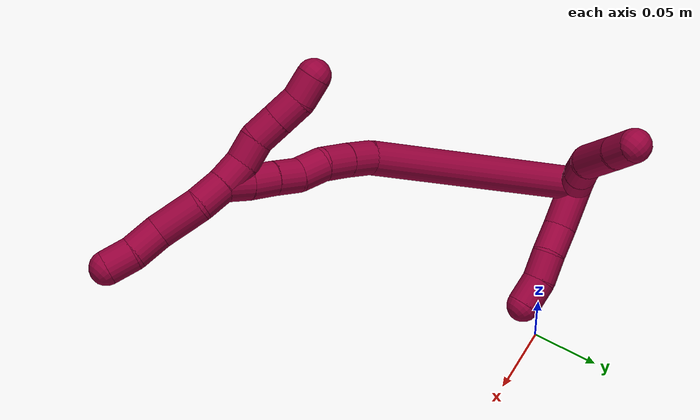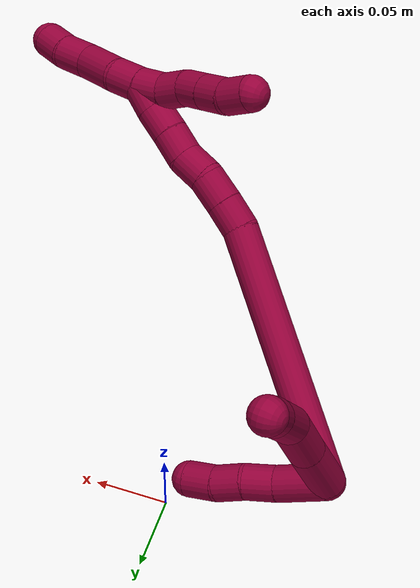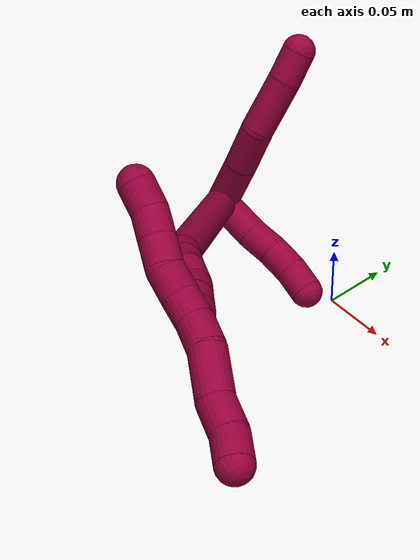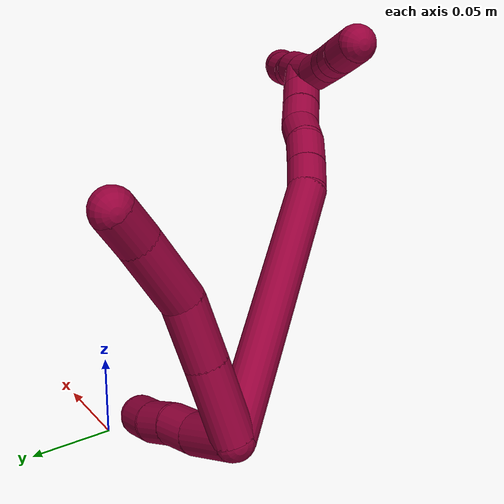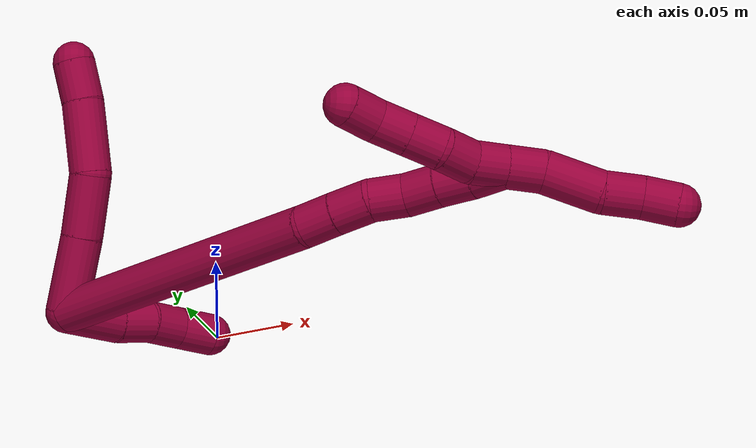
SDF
<sdf version="1.7">
 <world name="default">
  <model name="photoneo_s_sensor">
   <static>1</static>
   <pose>0 0 2 1.57079 1.57079 3.14159</pose>
   <link name="link">
    <inertial><mass>0.1</mass></inertial>
    <sensor name="sensor" type="depth">
     <update_rate>30</update_rate>
     <camera>
      <horizontal_fov>1.22</horizontal_fov>
      <image><width>1920</width><height>1200</height><format>B8G8R8</format></image>
      <clip><near>0.1</near><far>4</far></clip>
      <depth_camera><output>points</output></depth_camera>
     </camera>
     <plugin name="camera_plugin" filename="libgazebo_ros_depth_camera.so">
      <baseline>0.2</baseline>
      <alwaysOn>1</alwaysOn>
      <updateRate>0.0</updateRate>
      <cameraName>camera_ir</cameraName>
      <imageTopicName>/camera/color/image_raw</imageTopicName>
      <cameraInfoTopicName>/camera/color/camera_info</cameraInfoTopicName>
      <depthImageTopicName>/camera/depth/image_raw</depthImageTopicName>
      <depthImageCameraInfoTopicName>/camera/depth/camera_info</depthImageCameraInfoTopicName>
      <pointCloudTopicName>/camera/depth/points</pointCloudTopicName>
      <frameName>fr_optical</frameName>
      <pointCloudCutoff>0.1</pointCloudCutoff>
      <pointCloudCutoffMax>2.0</pointCloudCutoffMax>
      <distortionK1>0</distortionK1>
      <distortionK2>0</distortionK2>
      <distortionK3>0</distortionK3>
      <distortionT1>0</distortionT1>
      <distortionT2>0</distortionT2>
      <CxPrime>0</CxPrime>
      <Cx>0</Cx>
      <Cy>0</Cy>
      <focalLength>0</focalLength>
      <hackBaseline>0</hackBaseline>
     </plugin>
    </sensor>
   </link>
  </model>
  <model name="8">
   <static>0</static>
   <link name="8">
    <collision name="collision-cylinder-e_1_2_8">
     <pose>-0.015939 -0.016117 0.001926 1.45186 -0.776301 -0.696314</pose>
     <geometry><cylinder><radius>0.0125</radius><length>0.045498</length></cylinder></geometry>
     <surface>
      <friction><ode><mu>1.16</mu><mu2>1.16</mu2><slip1>0</slip1><slip2>0</slip2></ode></friction>
      <contact><ode><kp>1e+06</kp><kd>1</kd><max_vel>0</max_vel><min_depth>0.001</min_depth></ode></contact>
     </surface>
    </collision>
    <visual name="visual-cylinder-e_1_2_8">
     <pose>-0.015939 -0.016117 0.001926 1.45186 -0.776301 -0.696314</pose>
     <geometry><cylinder><radius>0.0125</radius><length>0.045498</length></cylinder></geometry>
     <material><ambient>0.584314 0 0.227451 1</ambient></material>
    </visual>
    <collision name="collision-cylinder-e_2_8_9">
     <pose>-0.045217 -0.04515 0.004351 1.53214 -0.801149 -0.773752</pose>
     <geometry><cylinder><radius>0.0125</radius><length>0.03715</length></cylinder></geometry>
     <surface>
      <friction><ode><mu>1.16</mu><mu2>1.16</mu2><slip1>0</slip1><slip2>0</slip2></ode></friction>
      <contact><ode><kp>1e+06</kp><kd>1</kd><max_vel>0</max_vel><min_depth>0.001</min_depth></ode></contact>
     </surface>
    </collision>
    <visual name="visual-cylinder-e_2_8_9">
     <pose>-0.045217 -0.04515 0.004351 1.53214 -0.801149 -0.773752</pose>
     <geometry><cylinder><radius>0.0125</radius><length>0.03715</length></cylinder></geometry>
     <material><ambient>0.584314 0 0.227451 1</ambient></material>
    </visual>
    <collision name="collision-cylinder-e_3_9_10">
     <pose>-0.077369 -0.067987 0.001142 1.92859 -1.05802 -1.40045</pose>
     <geometry><cylinder><radius>0.0125</radius><length>0.043178</length></cylinder></geometry>
     <surface>
      <friction><ode><mu>1.16</mu><mu2>1.16</mu2><slip1>0</slip1><slip2>0</slip2></ode></friction>
      <contact><ode><kp>1e+06</kp><kd>1</kd><max_vel>0</max_vel><min_depth>0.001</min_depth></ode></contact>
     </surface>
    </collision>
    <visual name="visual-cylinder-e_3_9_10">
     <pose>-0.077369 -0.067987 0.001142 1.92859 -1.05802 -1.40045</pose>
     <geometry><cylinder><radius>0.0125</radius><length>0.043178</length></cylinder></geometry>
     <material><ambient>0.584314 0 0.227451 1</ambient></material>
    </visual>
    <collision name="collision-cylinder-e_4_10_6">
     <pose>-0.106675 -0.082894 -0.005904 2.16059 -1.05136 -1.65349</pose>
     <geometry><cylinder><radius>0.0125</radius><length>0.024175</length></cylinder></geometry>
     <surface>
      <friction><ode><mu>1.16</mu><mu2>1.16</mu2><slip1>0</slip1><slip2>0</slip2></ode></friction>
      <contact><ode><kp>1e+06</kp><kd>1</kd><max_vel>0</max_vel><min_depth>0.001</min_depth></ode></contact>
     </surface>
    </collision>
    <visual name="visual-cylinder-e_4_10_6">
     <pose>-0.106675 -0.082894 -0.005904 2.16059 -1.05136 -1.65349</pose>
     <geometry><cylinder><radius>0.0125</radius><length>0.024175</length></cylinder></geometry>
     <material><ambient>0.584314 0 0.227451 1</ambient></material>
    </visual>
    <collision name="collision-cylinder-e_1_2_11">
     <pose>-0.002787 0.006384 0.016207 -0.375228 -0.15865 0.03018</pose>
     <geometry><cylinder><radius>0.0125</radius><length>0.03528</length></cylinder></geometry>
     <surface>
      <friction><ode><mu>1.16</mu><mu2>1.16</mu2><slip1>0</slip1><slip2>0</slip2></ode></friction>
      <contact><ode><kp>1e+06</kp><kd>1</kd><max_vel>0</max_vel><min_depth>0.001</min_depth></ode></contact>
     </surface>
    </collision>
    <visual name="visual-cylinder-e_1_2_11">
     <pose>-0.002787 0.006384 0.016207 -0.375228 -0.15865 0.03018</pose>
     <geometry><cylinder><radius>0.0125</radius><length>0.03528</length></cylinder></geometry>
     <material><ambient>0.584314 0 0.227451 1</ambient></material>
    </visual>
    <collision name="collision-cylinder-e_2_11_12">
     <pose>-0.008506 0.015196 0.042818 -0.229302 -0.267804 0.031022</pose>
     <geometry><cylinder><radius>0.0125</radius><length>0.022159</length></cylinder></geometry>
     <surface>
      <friction><ode><mu>1.16</mu><mu2>1.16</mu2><slip1>0</slip1><slip2>0</slip2></ode></friction>
      <contact><ode><kp>1e+06</kp><kd>1</kd><max_vel>0</max_vel><min_depth>0.001</min_depth></ode></contact>
     </surface>
    </collision>
    <visual name="visual-cylinder-e_2_11_12">
     <pose>-0.008506 0.015196 0.042818 -0.229302 -0.267804 0.031022</pose>
     <geometry><cylinder><radius>0.0125</radius><length>0.022159</length></cylinder></geometry>
     <material><ambient>0.584314 0 0.227451 1</ambient></material>
    </visual>
    <collision name="collision-cylinder-e_3_12_13">
     <pose>-0.013119 0.021595 0.062795 -0.393222 -0.160878 0.032111</pose>
     <geometry><cylinder><radius>0.0125</radius><length>0.020997</length></cylinder></geometry>
     <surface>
      <friction><ode><mu>1.16</mu><mu2>1.16</mu2><slip1>0</slip1><slip2>0</slip2></ode></friction>
      <contact><ode><kp>1e+06</kp><kd>1</kd><max_vel>0</max_vel><min_depth>0.001</min_depth></ode></contact>
     </surface>
    </collision>
    <visual name="visual-cylinder-e_3_12_13">
     <pose>-0.013119 0.021595 0.062795 -0.393222 -0.160878 0.032111</pose>
     <geometry><cylinder><radius>0.0125</radius><length>0.020997</length></cylinder></geometry>
     <material><ambient>0.584314 0 0.227451 1</ambient></material>
    </visual>
    <collision name="collision-cylinder-e_4_13_5">
     <pose>-0.015148 0.027952 0.082876 -0.223259 -0.032214 0.003611</pose>
     <geometry><cylinder><radius>0.0125</radius><length>0.021564</length></cylinder></geometry>
     <surface>
      <friction><ode><mu>1.16</mu><mu2>1.16</mu2><slip1>0</slip1><slip2>0</slip2></ode></friction>
      <contact><ode><kp>1e+06</kp><kd>1</kd><max_vel>0</max_vel><min_depth>0.001</min_depth></ode></contact>
     </surface>
    </collision>
    <visual name="visual-cylinder-e_4_13_5">
     <pose>-0.015148 0.027952 0.082876 -0.223259 -0.032214 0.003611</pose>
     <geometry><cylinder><radius>0.0125</radius><length>0.021564</length></cylinder></geometry>
     <material><ambient>0.584314 0 0.227451 1</ambient></material>
    </visual>
    <collision name="collision-cylinder-e_1_2_14">
     <pose>0.013652 -0.068187 0.054847 0.8934 0.154756 0.074241</pose>
     <geometry><cylinder><radius>0.0125</radius><length>0.177133</length></cylinder></geometry>
     <surface>
      <friction><ode><mu>1.16</mu><mu2>1.16</mu2><slip1>0</slip1><slip2>0</slip2></ode></friction>
      <contact><ode><kp>1e+06</kp><kd>1</kd><max_vel>0</max_vel><min_depth>0.001</min_depth></ode></contact>
     </surface>
    </collision>
    <visual name="visual-cylinder-e_1_2_14">
     <pose>0.013652 -0.068187 0.054847 0.8934 0.154756 0.074241</pose>
     <geometry><cylinder><radius>0.0125</radius><length>0.177133</length></cylinder></geometry>
     <material><ambient>0.584314 0 0.227451 1</ambient></material>
    </visual>
    <collision name="collision-cylinder-e_2_14_15">
     <pose>0.027054 -0.143323 0.117352 0.736966 -0.024096 -0.009304</pose>
     <geometry><cylinder><radius>0.0125</radius><length>0.020687</length></cylinder></geometry>
     <surface>
      <friction><ode><mu>1.16</mu><mu2>1.16</mu2><slip1>0</slip1><slip2>0</slip2></ode></friction>
      <contact><ode><kp>1e+06</kp><kd>1</kd><max_vel>0</max_vel><min_depth>0.001</min_depth></ode></contact>
     </surface>
    </collision>
    <visual name="visual-cylinder-e_2_14_15">
     <pose>0.027054 -0.143323 0.117352 0.736966 -0.024096 -0.009304</pose>
     <geometry><cylinder><radius>0.0125</radius><length>0.020687</length></cylinder></geometry>
     <material><ambient>0.584314 0 0.227451 1</ambient></material>
    </visual>
    <collision name="collision-cylinder-e_3_15_16">
     <pose>0.026468 -0.157188 0.133298 0.695296 -0.031148 -0.011288</pose>
     <geometry><cylinder><radius>0.0125</radius><length>0.0216</length></cylinder></geometry>
     <surface>
      <friction><ode><mu>1.16</mu><mu2>1.16</mu2><slip1>0</slip1><slip2>0</slip2></ode></friction>
      <contact><ode><kp>1e+06</kp><kd>1</kd><max_vel>0</max_vel><min_depth>0.001</min_depth></ode></contact>
     </surface>
    </collision>
    <visual name="visual-cylinder-e_3_15_16">
     <pose>0.026468 -0.157188 0.133298 0.695296 -0.031148 -0.011288</pose>
     <geometry><cylinder><radius>0.0125</radius><length>0.0216</length></cylinder></geometry>
     <material><ambient>0.584314 0 0.227451 1</ambient></material>
    </visual>
    <collision name="collision-cylinder-e_4_16_17">
     <pose>0.026312 -0.16827 0.150976 0.417661 0.017555 0.00372</pose>
     <geometry><cylinder><radius>0.0125</radius><length>0.020549</length></cylinder></geometry>
     <surface>
      <friction><ode><mu>1.16</mu><mu2>1.16</mu2><slip1>0</slip1><slip2>0</slip2></ode></friction>
      <contact><ode><kp>1e+06</kp><kd>1</kd><max_vel>0</max_vel><min_depth>0.001</min_depth></ode></contact>
     </surface>
    </collision>
    <visual name="visual-cylinder-e_4_16_17">
     <pose>0.026312 -0.16827 0.150976 0.417661 0.017555 0.00372</pose>
     <geometry><cylinder><radius>0.0125</radius><length>0.020549</length></cylinder></geometry>
     <material><ambient>0.584314 0 0.227451 1</ambient></material>
    </visual>
    <collision name="collision-cylinder-e_5_17_18">
     <pose>0.027078 -0.178822 0.16806 0.692742 0.058429 0.021094</pose>
     <geometry><cylinder><radius>0.0125</radius><length>0.020031</length></cylinder></geometry>
     <surface>
      <friction><ode><mu>1.16</mu><mu2>1.16</mu2><slip1>0</slip1><slip2>0</slip2></ode></friction>
      <contact><ode><kp>1e+06</kp><kd>1</kd><max_vel>0</max_vel><min_depth>0.001</min_depth></ode></contact>
     </surface>
    </collision>
    <visual name="visual-cylinder-e_5_17_18">
     <pose>0.027078 -0.178822 0.16806 0.692742 0.058429 0.021094</pose>
     <geometry><cylinder><radius>0.0125</radius><length>0.020031</length></cylinder></geometry>
     <material><ambient>0.584314 0 0.227451 1</ambient></material>
    </visual>
    <collision name="collision-cylinder-e_6_18_19">
     <pose>0.028381 -0.191177 0.183744 0.641646 0.071919 0.023908</pose>
     <geometry><cylinder><radius>0.0125</radius><length>0.02</length></cylinder></geometry>
     <surface>
      <friction><ode><mu>1.16</mu><mu2>1.16</mu2><slip1>0</slip1><slip2>0</slip2></ode></friction>
      <contact><ode><kp>1e+06</kp><kd>1</kd><max_vel>0</max_vel><min_depth>0.001</min_depth></ode></contact>
     </surface>
    </collision>
    <visual name="visual-cylinder-e_6_18_19">
     <pose>0.028381 -0.191177 0.183744 0.641646 0.071919 0.023908</pose>
     <geometry><cylinder><radius>0.0125</radius><length>0.02</length></cylinder></geometry>
     <material><ambient>0.584314 0 0.227451 1</ambient></material>
    </visual>
    <collision name="collision-cylinder-e_7_19_1">
     <pose>0.029754 -0.203917 0.199065 0.745695 0.0655 0.025628</pose>
     <geometry><cylinder><radius>0.0125</radius><length>0.02</length></cylinder></geometry>
     <surface>
      <friction><ode><mu>1.16</mu><mu2>1.16</mu2><slip1>0</slip1><slip2>0</slip2></ode></friction>
      <contact><ode><kp>1e+06</kp><kd>1</kd><max_vel>0</max_vel><min_depth>0.001</min_depth></ode></contact>
     </surface>
    </collision>
    <visual name="visual-cylinder-e_7_19_1">
     <pose>0.029754 -0.203917 0.199065 0.745695 0.0655 0.025628</pose>
     <geometry><cylinder><radius>0.0125</radius><length>0.02</length></cylinder></geometry>
     <material><ambient>0.584314 0 0.227451 1</ambient></material>
    </visual>
    <collision name="collision-cylinder-e_1_1_20">
     <pose>0.031352 -0.211327 0.217183 0.059226 0.08703 0.00258</pose>
     <geometry><cylinder><radius>0.0125</radius><length>0.021695</length></cylinder></geometry>
     <surface>
      <friction><ode><mu>1.16</mu><mu2>1.16</mu2><slip1>0</slip1><slip2>0</slip2></ode></friction>
      <contact><ode><kp>1e+06</kp><kd>1</kd><max_vel>0</max_vel><min_depth>0.001</min_depth></ode></contact>
     </surface>
    </collision>
    <visual name="visual-cylinder-e_1_1_20">
     <pose>0.031352 -0.211327 0.217183 0.059226 0.08703 0.00258</pose>
     <geometry><cylinder><radius>0.0125</radius><length>0.021695</length></cylinder></geometry>
     <material><ambient>0.584314 0 0.227451 1</ambient></material>
    </visual>
    <collision name="collision-cylinder-e_2_20_21">
     <pose>0.037781 -0.212193 0.24414 0.013951 0.327091 0.002302</pose>
     <geometry><cylinder><radius>0.0125</radius><length>0.034154</length></cylinder></geometry>
     <surface>
      <friction><ode><mu>1.16</mu><mu2>1.16</mu2><slip1>0</slip1><slip2>0</slip2></ode></friction>
      <contact><ode><kp>1e+06</kp><kd>1</kd><max_vel>0</max_vel><min_depth>0.001</min_depth></ode></contact>
     </surface>
    </collision>
    <visual name="visual-cylinder-e_2_20_21">
     <pose>0.037781 -0.212193 0.24414 0.013951 0.327091 0.002302</pose>
     <geometry><cylinder><radius>0.0125</radius><length>0.034154</length></cylinder></geometry>
     <material><ambient>0.584314 0 0.227451 1</ambient></material>
    </visual>
    <collision name="collision-cylinder-e_3_21_22">
     <pose>0.044224 -0.213121 0.271867 0.060711 0.082406 0.002504</pose>
     <geometry><cylinder><radius>0.0125</radius><length>0.023235</length></cylinder></geometry>
     <surface>
      <friction><ode><mu>1.16</mu><mu2>1.16</mu2><slip1>0</slip1><slip2>0</slip2></ode></friction>
      <contact><ode><kp>1e+06</kp><kd>1</kd><max_vel>0</max_vel><min_depth>0.001</min_depth></ode></contact>
     </surface>
    </collision>
    <visual name="visual-cylinder-e_3_21_22">
     <pose>0.044224 -0.213121 0.271867 0.060711 0.082406 0.002504</pose>
     <geometry><cylinder><radius>0.0125</radius><length>0.023235</length></cylinder></geometry>
     <material><ambient>0.584314 0 0.227451 1</ambient></material>
    </visual>
    <collision name="collision-cylinder-e_4_22_4">
     <pose>0.048014 -0.21547 0.293355 0.16429 0.274362 0.02273</pose>
     <geometry><cylinder><radius>0.0125</radius><length>0.020916</length></cylinder></geometry>
     <surface>
      <friction><ode><mu>1.16</mu><mu2>1.16</mu2><slip1>0</slip1><slip2>0</slip2></ode></friction>
      <contact><ode><kp>1e+06</kp><kd>1</kd><max_vel>0</max_vel><min_depth>0.001</min_depth></ode></contact>
     </surface>
    </collision>
    <visual name="visual-cylinder-e_4_22_4">
     <pose>0.048014 -0.21547 0.293355 0.16429 0.274362 0.02273</pose>
     <geometry><cylinder><radius>0.0125</radius><length>0.020916</length></cylinder></geometry>
     <material><ambient>0.584314 0 0.227451 1</ambient></material>
    </visual>
    <collision name="collision-cylinder-e_1_1_23">
     <pose>0.030414 -0.211164 0.196407 3.09391 0.000503 0.021101</pose>
     <geometry><cylinder><radius>0.0125</radius><length>0.02</length></cylinder></geometry>
     <surface>
      <friction><ode><mu>1.16</mu><mu2>1.16</mu2><slip1>0</slip1><slip2>0</slip2></ode></friction>
      <contact><ode><kp>1e+06</kp><kd>1</kd><max_vel>0</max_vel><min_depth>0.001</min_depth></ode></contact>
     </surface>
    </collision>
    <visual name="visual-cylinder-e_1_1_23">
     <pose>0.030414 -0.211164 0.196407 3.09391 0.000503 0.021101</pose>
     <geometry><cylinder><radius>0.0125</radius><length>0.02</length></cylinder></geometry>
     <material><ambient>0.584314 0 0.227451 1</ambient></material>
    </visual>
    <collision name="collision-cylinder-e_2_23_24">
     <pose>0.029594 -0.215249 0.177128 2.77118 -0.08258 -0.434073</pose>
     <geometry><cylinder><radius>0.0125</radius><length>0.02</length></cylinder></geometry>
     <surface>
      <friction><ode><mu>1.16</mu><mu2>1.16</mu2><slip1>0</slip1><slip2>0</slip2></ode></friction>
      <contact><ode><kp>1e+06</kp><kd>1</kd><max_vel>0</max_vel><min_depth>0.001</min_depth></ode></contact>
     </surface>
    </collision>
    <visual name="visual-cylinder-e_2_23_24">
     <pose>0.029594 -0.215249 0.177128 2.77118 -0.08258 -0.434073</pose>
     <geometry><cylinder><radius>0.0125</radius><length>0.02</length></cylinder></geometry>
     <material><ambient>0.584314 0 0.227451 1</ambient></material>
    </visual>
    <collision name="collision-cylinder-e_3_24_25">
     <pose>0.026078 -0.220115 0.15829 3.01048 -0.272408 -2.24816</pose>
     <geometry><cylinder><radius>0.0125</radius><length>0.02</length></cylinder></geometry>
     <surface>
      <friction><ode><mu>1.16</mu><mu2>1.16</mu2><slip1>0</slip1><slip2>0</slip2></ode></friction>
      <contact><ode><kp>1e+06</kp><kd>1</kd><max_vel>0</max_vel><min_depth>0.001</min_depth></ode></contact>
     </surface>
    </collision>
    <visual name="visual-cylinder-e_3_24_25">
     <pose>0.026078 -0.220115 0.15829 3.01048 -0.272408 -2.24816</pose>
     <geometry><cylinder><radius>0.0125</radius><length>0.02</length></cylinder></geometry>
     <material><ambient>0.584314 0 0.227451 1</ambient></material>
    </visual>
    <collision name="collision-cylinder-e_4_25_26">
     <pose>0.020709 -0.222672 0.139194 3.00653 -0.271167 -2.22107</pose>
     <geometry><cylinder><radius>0.0125</radius><length>0.02</length></cylinder></geometry>
     <surface>
      <friction><ode><mu>1.16</mu><mu2>1.16</mu2><slip1>0</slip1><slip2>0</slip2></ode></friction>
      <contact><ode><kp>1e+06</kp><kd>1</kd><max_vel>0</max_vel><min_depth>0.001</min_depth></ode></contact>
     </surface>
    </collision>
    <visual name="visual-cylinder-e_4_25_26">
     <pose>0.020709 -0.222672 0.139194 3.00653 -0.271167 -2.22107</pose>
     <geometry><cylinder><radius>0.0125</radius><length>0.02</length></cylinder></geometry>
     <material><ambient>0.584314 0 0.227451 1</ambient></material>
    </visual>
    <collision name="collision-cylinder-e_5_26_3">
     <pose>0.016809 -0.227614 0.120416 2.76555 -0.122476 -0.623486</pose>
     <geometry><cylinder><radius>0.0125</radius><length>0.02</length></cylinder></geometry>
     <surface>
      <friction><ode><mu>1.16</mu><mu2>1.16</mu2><slip1>0</slip1><slip2>0</slip2></ode></friction>
      <contact><ode><kp>1e+06</kp><kd>1</kd><max_vel>0</max_vel><min_depth>0.001</min_depth></ode></contact>
     </surface>
    </collision>
    <visual name="visual-cylinder-e_5_26_3">
     <pose>0.016809 -0.227614 0.120416 2.76555 -0.122476 -0.623486</pose>
     <geometry><cylinder><radius>0.0125</radius><length>0.02</length></cylinder></geometry>
     <material><ambient>0.584314 0 0.227451 1</ambient></material>
    </visual>
    <collision name="collision-sphere-3">
     <pose>0.015587 -0.231259 0.111184 0 -0 0</pose>
     <geometry><sphere><radius>0.0125</radius></sphere></geometry>
     <surface>
      <friction><ode><mu>1.16</mu><mu2>1.16</mu2><slip1>0</slip1><slip2>0</slip2></ode></friction>
      <contact><ode><kp>1e+06</kp><kd>1</kd><max_vel>0</max_vel><min_depth>0.001</min_depth></ode></contact>
     </surface>
    </collision>
    <visual name="visual-sphere-3">
     <pose>0.015587 -0.231259 0.111184 0 -0 0</pose>
     <geometry><sphere><radius>0.0125</radius></sphere></geometry>
     <material><ambient>0.584314 0 0.227451 1</ambient></material>
    </visual>
    <collision name="collision-sphere-26">
     <pose>0.018031 -0.223969 0.129647 0 -0 0</pose>
     <geometry><sphere><radius>0.0125</radius></sphere></geometry>
     <surface>
      <friction><ode><mu>1.16</mu><mu2>1.16</mu2><slip1>0</slip1><slip2>0</slip2></ode></friction>
      <contact><ode><kp>1e+06</kp><kd>1</kd><max_vel>0</max_vel><min_depth>0.001</min_depth></ode></contact>
     </surface>
    </collision>
    <visual name="visual-sphere-26">
     <pose>0.018031 -0.223969 0.129647 0 -0 0</pose>
     <geometry><sphere><radius>0.0125</radius></sphere></geometry>
     <material><ambient>0.584314 0 0.227451 1</ambient></material>
    </visual>
    <collision name="collision-sphere-25">
     <pose>0.023388 -0.221375 0.148741 0 -0 0</pose>
     <geometry><sphere><radius>0.0125</radius></sphere></geometry>
     <surface>
      <friction><ode><mu>1.16</mu><mu2>1.16</mu2><slip1>0</slip1><slip2>0</slip2></ode></friction>
      <contact><ode><kp>1e+06</kp><kd>1</kd><max_vel>0</max_vel><min_depth>0.001</min_depth></ode></contact>
     </surface>
    </collision>
    <visual name="visual-sphere-25">
     <pose>0.023388 -0.221375 0.148741 0 -0 0</pose>
     <geometry><sphere><radius>0.0125</radius></sphere></geometry>
     <material><ambient>0.584314 0 0.227451 1</ambient></material>
    </visual>
    <collision name="collision-sphere-24">
     <pose>0.028769 -0.218856 0.167838 0 -0 0</pose>
     <geometry><sphere><radius>0.0125</radius></sphere></geometry>
     <surface>
      <friction><ode><mu>1.16</mu><mu2>1.16</mu2><slip1>0</slip1><slip2>0</slip2></ode></friction>
      <contact><ode><kp>1e+06</kp><kd>1</kd><max_vel>0</max_vel><min_depth>0.001</min_depth></ode></contact>
     </surface>
    </collision>
    <visual name="visual-sphere-24">
     <pose>0.028769 -0.218856 0.167838 0 -0 0</pose>
     <geometry><sphere><radius>0.0125</radius></sphere></geometry>
     <material><ambient>0.584314 0 0.227451 1</ambient></material>
    </visual>
    <collision name="collision-sphere-23">
     <pose>0.030419 -0.211641 0.186418 0 -0 0</pose>
     <geometry><sphere><radius>0.0125</radius></sphere></geometry>
     <surface>
      <friction><ode><mu>1.16</mu><mu2>1.16</mu2><slip1>0</slip1><slip2>0</slip2></ode></friction>
      <contact><ode><kp>1e+06</kp><kd>1</kd><max_vel>0</max_vel><min_depth>0.001</min_depth></ode></contact>
     </surface>
    </collision>
    <visual name="visual-sphere-23">
     <pose>0.030419 -0.211641 0.186418 0 -0 0</pose>
     <geometry><sphere><radius>0.0125</radius></sphere></geometry>
     <material><ambient>0.584314 0 0.227451 1</ambient></material>
    </visual>
    <collision name="collision-sphere-4">
     <pose>0.050847 -0.217116 0.303287 0 -0 0</pose>
     <geometry><sphere><radius>0.0125</radius></sphere></geometry>
     <surface>
      <friction><ode><mu>1.16</mu><mu2>1.16</mu2><slip1>0</slip1><slip2>0</slip2></ode></friction>
      <contact><ode><kp>1e+06</kp><kd>1</kd><max_vel>0</max_vel><min_depth>0.001</min_depth></ode></contact>
     </surface>
    </collision>
    <visual name="visual-sphere-4">
     <pose>0.050847 -0.217116 0.303287 0 -0 0</pose>
     <geometry><sphere><radius>0.0125</radius></sphere></geometry>
     <material><ambient>0.584314 0 0.227451 1</ambient></material>
    </visual>
    <collision name="collision-sphere-22">
     <pose>0.04518 -0.213823 0.283424 0 -0 0</pose>
     <geometry><sphere><radius>0.0125</radius></sphere></geometry>
     <surface>
      <friction><ode><mu>1.16</mu><mu2>1.16</mu2><slip1>0</slip1><slip2>0</slip2></ode></friction>
      <contact><ode><kp>1e+06</kp><kd>1</kd><max_vel>0</max_vel><min_depth>0.001</min_depth></ode></contact>
     </surface>
    </collision>
    <visual name="visual-sphere-22">
     <pose>0.04518 -0.213823 0.283424 0 -0 0</pose>
     <geometry><sphere><radius>0.0125</radius></sphere></geometry>
     <material><ambient>0.584314 0 0.227451 1</ambient></material>
    </visual>
    <collision name="collision-sphere-21">
     <pose>0.043268 -0.212418 0.26031 0 -0 0</pose>
     <geometry><sphere><radius>0.0125</radius></sphere></geometry>
     <surface>
      <friction><ode><mu>1.16</mu><mu2>1.16</mu2><slip1>0</slip1><slip2>0</slip2></ode></friction>
      <contact><ode><kp>1e+06</kp><kd>1</kd><max_vel>0</max_vel><min_depth>0.001</min_depth></ode></contact>
     </surface>
    </collision>
    <visual name="visual-sphere-21">
     <pose>0.043268 -0.212418 0.26031 0 -0 0</pose>
     <geometry><sphere><radius>0.0125</radius></sphere></geometry>
     <material><ambient>0.584314 0 0.227451 1</ambient></material>
    </visual>
    <collision name="collision-sphere-20">
     <pose>0.032294 -0.211967 0.22797 0 -0 0</pose>
     <geometry><sphere><radius>0.0125</radius></sphere></geometry>
     <surface>
      <friction><ode><mu>1.16</mu><mu2>1.16</mu2><slip1>0</slip1><slip2>0</slip2></ode></friction>
      <contact><ode><kp>1e+06</kp><kd>1</kd><max_vel>0</max_vel><min_depth>0.001</min_depth></ode></contact>
     </surface>
    </collision>
    <visual name="visual-sphere-20">
     <pose>0.032294 -0.211967 0.22797 0 -0 0</pose>
     <geometry><sphere><radius>0.0125</radius></sphere></geometry>
     <material><ambient>0.584314 0 0.227451 1</ambient></material>
    </visual>
    <collision name="collision-sphere-11">
     <pose>-0.005574 0.012767 0.032413 0 -0 0</pose>
     <geometry><sphere><radius>0.0125</radius></sphere></geometry>
     <surface>
      <friction><ode><mu>1.16</mu><mu2>1.16</mu2><slip1>0</slip1><slip2>0</slip2></ode></friction>
      <contact><ode><kp>1e+06</kp><kd>1</kd><max_vel>0</max_vel><min_depth>0.001</min_depth></ode></contact>
     </surface>
    </collision>
    <visual name="visual-sphere-11">
     <pose>-0.005574 0.012767 0.032413 0 -0 0</pose>
     <geometry><sphere><radius>0.0125</radius></sphere></geometry>
     <material><ambient>0.584314 0 0.227451 1</ambient></material>
    </visual>
    <collision name="collision-sphere-6">
     <pose>-0.117168 -0.087881 -0.009242 0 -0 0</pose>
     <geometry><sphere><radius>0.0125</radius></sphere></geometry>
     <surface>
      <friction><ode><mu>1.16</mu><mu2>1.16</mu2><slip1>0</slip1><slip2>0</slip2></ode></friction>
      <contact><ode><kp>1e+06</kp><kd>1</kd><max_vel>0</max_vel><min_depth>0.001</min_depth></ode></contact>
     </surface>
    </collision>
    <visual name="visual-sphere-6">
     <pose>-0.117168 -0.087881 -0.009242 0 -0 0</pose>
     <geometry><sphere><radius>0.0125</radius></sphere></geometry>
     <material><ambient>0.584314 0 0.227451 1</ambient></material>
    </visual>
    <collision name="collision-sphere-10">
     <pose>-0.096182 -0.077908 -0.002567 0 -0 0</pose>
     <geometry><sphere><radius>0.0125</radius></sphere></geometry>
     <surface>
      <friction><ode><mu>1.16</mu><mu2>1.16</mu2><slip1>0</slip1><slip2>0</slip2></ode></friction>
      <contact><ode><kp>1e+06</kp><kd>1</kd><max_vel>0</max_vel><min_depth>0.001</min_depth></ode></contact>
     </surface>
    </collision>
    <visual name="visual-sphere-10">
     <pose>-0.096182 -0.077908 -0.002567 0 -0 0</pose>
     <geometry><sphere><radius>0.0125</radius></sphere></geometry>
     <material><ambient>0.584314 0 0.227451 1</ambient></material>
    </visual>
    <collision name="collision-sphere-9">
     <pose>-0.058557 -0.058066 0.004851 0 -0 0</pose>
     <geometry><sphere><radius>0.0125</radius></sphere></geometry>
     <surface>
      <friction><ode><mu>1.16</mu><mu2>1.16</mu2><slip1>0</slip1><slip2>0</slip2></ode></friction>
      <contact><ode><kp>1e+06</kp><kd>1</kd><max_vel>0</max_vel><min_depth>0.001</min_depth></ode></contact>
     </surface>
    </collision>
    <visual name="visual-sphere-9">
     <pose>-0.058557 -0.058066 0.004851 0 -0 0</pose>
     <geometry><sphere><radius>0.0125</radius></sphere></geometry>
     <material><ambient>0.584314 0 0.227451 1</ambient></material>
    </visual>
    <collision name="collision-sphere-2">
     <geometry><sphere><radius>0.0125</radius></sphere></geometry>
     <surface>
      <friction><ode><mu>1.16</mu><mu2>1.16</mu2><slip1>0</slip1><slip2>0</slip2></ode></friction>
      <contact><ode><kp>1e+06</kp><kd>1</kd><max_vel>0</max_vel><min_depth>0.001</min_depth></ode></contact>
     </surface>
    </collision>
    <visual name="visual-sphere-2">
     <geometry><sphere><radius>0.0125</radius></sphere></geometry>
     <material><ambient>0.584314 0 0.227451 1</ambient></material>
    </visual>
    <collision name="collision-sphere-19">
     <pose>0.0291 -0.197147 0.191735 0 -0 0</pose>
     <geometry><sphere><radius>0.0125</radius></sphere></geometry>
     <surface>
      <friction><ode><mu>1.16</mu><mu2>1.16</mu2><slip1>0</slip1><slip2>0</slip2></ode></friction>
      <contact><ode><kp>1e+06</kp><kd>1</kd><max_vel>0</max_vel><min_depth>0.001</min_depth></ode></contact>
     </surface>
    </collision>
    <visual name="visual-sphere-19">
     <pose>0.0291 -0.197147 0.191735 0 -0 0</pose>
     <geometry><sphere><radius>0.0125</radius></sphere></geometry>
     <material><ambient>0.584314 0 0.227451 1</ambient></material>
    </visual>
    <collision name="collision-sphere-8">
     <pose>-0.031878 -0.032234 0.003852 0 -0 0</pose>
     <geometry><sphere><radius>0.0125</radius></sphere></geometry>
     <surface>
      <friction><ode><mu>1.16</mu><mu2>1.16</mu2><slip1>0</slip1><slip2>0</slip2></ode></friction>
      <contact><ode><kp>1e+06</kp><kd>1</kd><max_vel>0</max_vel><min_depth>0.001</min_depth></ode></contact>
     </surface>
    </collision>
    <visual name="visual-sphere-8">
     <pose>-0.031878 -0.032234 0.003852 0 -0 0</pose>
     <geometry><sphere><radius>0.0125</radius></sphere></geometry>
     <material><ambient>0.584314 0 0.227451 1</ambient></material>
    </visual>
    <collision name="collision-sphere-12">
     <pose>-0.011437 0.017624 0.053223 0 -0 0</pose>
     <geometry><sphere><radius>0.0125</radius></sphere></geometry>
     <surface>
      <friction><ode><mu>1.16</mu><mu2>1.16</mu2><slip1>0</slip1><slip2>0</slip2></ode></friction>
      <contact><ode><kp>1e+06</kp><kd>1</kd><max_vel>0</max_vel><min_depth>0.001</min_depth></ode></contact>
     </surface>
    </collision>
    <visual name="visual-sphere-12">
     <pose>-0.011437 0.017624 0.053223 0 -0 0</pose>
     <geometry><sphere><radius>0.0125</radius></sphere></geometry>
     <material><ambient>0.584314 0 0.227451 1</ambient></material>
    </visual>
    <collision name="collision-sphere-13">
     <pose>-0.014801 0.025566 0.072367 0 -0 0</pose>
     <geometry><sphere><radius>0.0125</radius></sphere></geometry>
     <surface>
      <friction><ode><mu>1.16</mu><mu2>1.16</mu2><slip1>0</slip1><slip2>0</slip2></ode></friction>
      <contact><ode><kp>1e+06</kp><kd>1</kd><max_vel>0</max_vel><min_depth>0.001</min_depth></ode></contact>
     </surface>
    </collision>
    <visual name="visual-sphere-13">
     <pose>-0.014801 0.025566 0.072367 0 -0 0</pose>
     <geometry><sphere><radius>0.0125</radius></sphere></geometry>
     <material><ambient>0.584314 0 0.227451 1</ambient></material>
    </visual>
    <collision name="collision-sphere-5">
     <pose>-0.015495 0.030338 0.093385 0 -0 0</pose>
     <geometry><sphere><radius>0.0125</radius></sphere></geometry>
     <surface>
      <friction><ode><mu>1.16</mu><mu2>1.16</mu2><slip1>0</slip1><slip2>0</slip2></ode></friction>
      <contact><ode><kp>1e+06</kp><kd>1</kd><max_vel>0</max_vel><min_depth>0.001</min_depth></ode></contact>
     </surface>
    </collision>
    <visual name="visual-sphere-5">
     <pose>-0.015495 0.030338 0.093385 0 -0 0</pose>
     <geometry><sphere><radius>0.0125</radius></sphere></geometry>
     <material><ambient>0.584314 0 0.227451 1</ambient></material>
    </visual>
    <collision name="collision-sphere-14">
     <pose>0.027303 -0.136374 0.109694 0 -0 0</pose>
     <geometry><sphere><radius>0.0125</radius></sphere></geometry>
     <surface>
      <friction><ode><mu>1.16</mu><mu2>1.16</mu2><slip1>0</slip1><slip2>0</slip2></ode></friction>
      <contact><ode><kp>1e+06</kp><kd>1</kd><max_vel>0</max_vel><min_depth>0.001</min_depth></ode></contact>
     </surface>
    </collision>
    <visual name="visual-sphere-14">
     <pose>0.027303 -0.136374 0.109694 0 -0 0</pose>
     <geometry><sphere><radius>0.0125</radius></sphere></geometry>
     <material><ambient>0.584314 0 0.227451 1</ambient></material>
    </visual>
    <collision name="collision-sphere-15">
     <pose>0.026805 -0.150272 0.125009 0 -0 0</pose>
     <geometry><sphere><radius>0.0125</radius></sphere></geometry>
     <surface>
      <friction><ode><mu>1.16</mu><mu2>1.16</mu2><slip1>0</slip1><slip2>0</slip2></ode></friction>
      <contact><ode><kp>1e+06</kp><kd>1</kd><max_vel>0</max_vel><min_depth>0.001</min_depth></ode></contact>
     </surface>
    </collision>
    <visual name="visual-sphere-15">
     <pose>0.026805 -0.150272 0.125009 0 -0 0</pose>
     <geometry><sphere><radius>0.0125</radius></sphere></geometry>
     <material><ambient>0.584314 0 0.227451 1</ambient></material>
    </visual>
    <collision name="collision-sphere-16">
     <pose>0.026132 -0.164103 0.141586 0 -0 0</pose>
     <geometry><sphere><radius>0.0125</radius></sphere></geometry>
     <surface>
      <friction><ode><mu>1.16</mu><mu2>1.16</mu2><slip1>0</slip1><slip2>0</slip2></ode></friction>
      <contact><ode><kp>1e+06</kp><kd>1</kd><max_vel>0</max_vel><min_depth>0.001</min_depth></ode></contact>
     </surface>
    </collision>
    <visual name="visual-sphere-16">
     <pose>0.026132 -0.164103 0.141586 0 -0 0</pose>
     <geometry><sphere><radius>0.0125</radius></sphere></geometry>
     <material><ambient>0.584314 0 0.227451 1</ambient></material>
    </visual>
    <collision name="collision-sphere-17">
     <pose>0.026493 -0.172437 0.160366 0 -0 0</pose>
     <geometry><sphere><radius>0.0125</radius></sphere></geometry>
     <surface>
      <friction><ode><mu>1.16</mu><mu2>1.16</mu2><slip1>0</slip1><slip2>0</slip2></ode></friction>
      <contact><ode><kp>1e+06</kp><kd>1</kd><max_vel>0</max_vel><min_depth>0.001</min_depth></ode></contact>
     </surface>
    </collision>
    <visual name="visual-sphere-17">
     <pose>0.026493 -0.172437 0.160366 0 -0 0</pose>
     <geometry><sphere><radius>0.0125</radius></sphere></geometry>
     <material><ambient>0.584314 0 0.227451 1</ambient></material>
    </visual>
    <collision name="collision-sphere-18">
     <pose>0.027662 -0.185208 0.175754 0 -0 0</pose>
     <geometry><sphere><radius>0.0125</radius></sphere></geometry>
     <surface>
      <friction><ode><mu>1.16</mu><mu2>1.16</mu2><slip1>0</slip1><slip2>0</slip2></ode></friction>
      <contact><ode><kp>1e+06</kp><kd>1</kd><max_vel>0</max_vel><min_depth>0.001</min_depth></ode></contact>
     </surface>
    </collision>
    <visual name="visual-sphere-18">
     <pose>0.027662 -0.185208 0.175754 0 -0 0</pose>
     <geometry><sphere><radius>0.0125</radius></sphere></geometry>
     <material><ambient>0.584314 0 0.227451 1</ambient></material>
    </visual>
    <collision name="collision-sphere-1">
     <pose>0.030409 -0.210688 0.206395 0 -0 0</pose>
     <geometry><sphere><radius>0.0125</radius></sphere></geometry>
     <surface>
      <friction><ode><mu>1.16</mu><mu2>1.16</mu2><slip1>0</slip1><slip2>0</slip2></ode></friction>
      <contact><ode><kp>1e+06</kp><kd>1</kd><max_vel>0</max_vel><min_depth>0.001</min_depth></ode></contact>
     </surface>
    </collision>
    <visual name="visual-sphere-1">
     <pose>0.030409 -0.210688 0.206395 0 -0 0</pose>
     <geometry><sphere><radius>0.0125</radius></sphere></geometry>
     <material><ambient>0.584314 0 0.227451 1</ambient></material>
    </visual>
    <inertial>
     <pose>0.004075 -0.109785 0.100348 0 -0 0</pose>
     <mass>0.75</mass>
     <inertia>
      <ixx>0.000514</ixx>
      <ixy>0</ixy>
      <ixz>0</ixz>
      <iyy>0.000335</iyy>
      <iyz>0</iyz>
      <izz>0.000352</izz>
     </inertia>
    </inertial>
   </link>
   <pose>-0.104425 -0.023582 0.046187 -1.77567 0.51667 -1.91235</pose>
  </model>
 </world>
</sdf>
